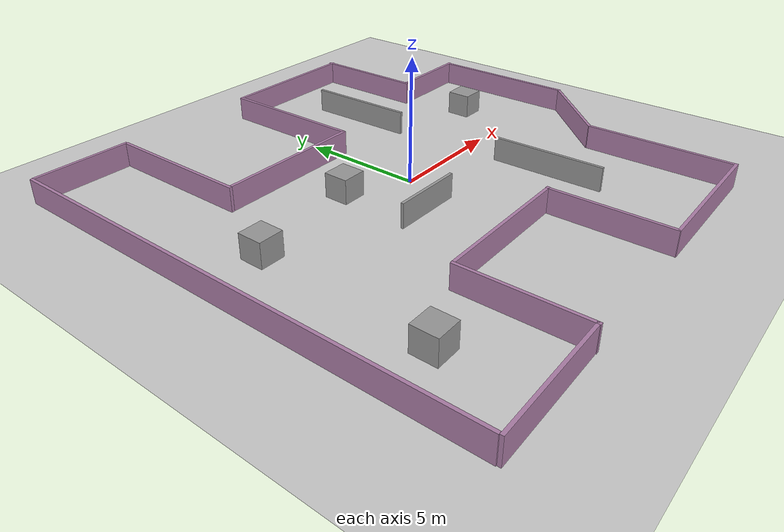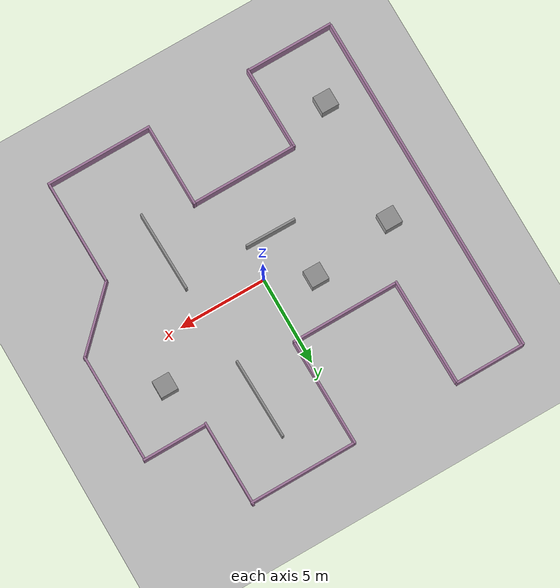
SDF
<sdf version="1.7">
 <world name="default">
  <light name="sun" type="directional">
   <pose>0 0 10 0 -0 0</pose>
   <diffuse>0.8 0.8 0.8 1</diffuse>
   <specular>0.2 0.2 0.2 1</specular>
   <attenuation>
    <range>1000</range>
    <constant>0.9</constant>
    <linear>0.01</linear>
    <quadratic>0.001</quadratic>
   </attenuation>
   <direction>-0.5 0.1 -0.9</direction>
   <spot><inner_angle>0</inner_angle><outer_angle>0</outer_angle><falloff>0</falloff></spot>
  </light>
  <model name="ground_plane">
   <static>1</static>
   <link name="link">
    <collision name="collision">
     <geometry><plane><normal>0 0 1</normal><size>100 100</size></plane></geometry>
     <surface>
      <contact><collide_bitmask>65535</collide_bitmask></contact>
      <friction><ode><mu>100</mu><mu2>50</mu2></ode></friction>
     </surface>
    </collision>
    <visual name="visual">
     <cast_shadows>0</cast_shadows>
     <geometry><plane><normal>0 0 1</normal><size>100 100</size></plane></geometry>
     <material>
      <script><uri>file://media/materials/scripts/gazebo.material</uri><name>Gazebo/Grey</name></script>
     </material>
    </visual>
   </link>
  </model>
  <gravity>0 0 -9.8</gravity>
  <magnetic_field>6e-06 2.3e-05 -4.2e-05</magnetic_field>
  <atmosphere type="adiabatic"/>
  <physics type="ode">
   <max_step_size>0.001</max_step_size>
   <real_time_factor>1</real_time_factor>
   <real_time_update_rate>1000</real_time_update_rate>
  </physics>
  <scene><ambient>0.4 0.4 0.4 1</ambient><background>0.7 0.7 0.7 1</background><shadows>1</shadows></scene>
  <spherical_coordinates>
   <surface_model>EARTH_WGS84</surface_model>
   <latitude_deg>0</latitude_deg>
   <longitude_deg>0</longitude_deg>
   <elevation>0</elevation>
   <heading_deg>0</heading_deg>
  </spherical_coordinates>
  <model name="walls2">
   <link name="link_0">
    <inertial>
     <mass>50</mass>
     <inertia><ixx>4.23073</ixx><ixy>0</ixy><ixz>0</ixz><iyy>159.789</iyy><iyz>0</iyz><izz>155.687</izz></inertia>
    </inertial>
    <pose>2.81569 9.66174 -0 0 -0 0</pose>
    <visual name="visual">
     <geometry><box><size>6.11142 0.123995 1</size></box></geometry>
     <material>
      <lighting>1</lighting>
      <script><uri>file://media/materials/scripts/gazebo.material</uri><name>Gazebo/Grey</name></script>
      <shader type="pixel"><normal_map>__default__</normal_map></shader>
      <ambient>0.678 0.498 0.659 1</ambient>
      <diffuse>0.7 0.7 0.7 1</diffuse>
      <specular>0.01 0.01 0.01 1</specular>
      <emissive>0 0 0 1</emissive>
     </material>
    </visual>
    <collision name="collision">
     <geometry><box><size>6.11142 0.123995 1</size></box></geometry>
     <surface>
      <friction>
       <ode><mu>1</mu><mu2>1</mu2><fdir1>0 0 0</fdir1><slip1>0</slip1><slip2>0</slip2></ode>
       <torsional>
        <coefficient>1</coefficient>
        <patch_radius>0</patch_radius>
        <surface_radius>0</surface_radius>
        <use_patch_radius>1</use_patch_radius>
        <ode><slip>0</slip></ode>
       </torsional>
      </friction>
      <bounce><restitution_coefficient>0</restitution_coefficient><threshold>1e+06</threshold></bounce>
      <contact>
       <collide_without_contact>0</collide_without_contact>
       <collide_without_contact_bitmask>1</collide_without_contact_bitmask>
       <collide_bitmask>1</collide_bitmask>
       <ode>
        <soft_cfm>0</soft_cfm>
        <soft_erp>0.2</soft_erp>
        <kp>1e+13</kp>
        <kd>1</kd>
        <max_vel>0.01</max_vel>
        <min_depth>0</min_depth>
       </ode>
       <bullet>
        <split_impulse>1</split_impulse>
        <split_impulse_penetration_threshold>-0.01</split_impulse_penetration_threshold>
        <soft_cfm>0</soft_cfm>
        <soft_erp>0.2</soft_erp>
        <kp>1e+13</kp>
        <kd>1</kd>
       </bullet>
      </contact>
     </surface>
    </collision>
   </link>
   <link name="link_0_clone">
    <inertial>
     <mass>50</mass>
     <inertia><ixx>4.23073</ixx><ixy>0</ixy><ixz>0</ixz><iyy>159.789</iyy><iyz>0</iyz><izz>155.687</izz></inertia>
    </inertial>
    <pose>-3.2525 3.58824 -0 0 -0 0</pose>
    <visual name="visual">
     <geometry><box><size>6.11142 0.123995 1</size></box></geometry>
     <material>
      <lighting>1</lighting>
      <script><uri>file://media/materials/scripts/gazebo.material</uri><name>Gazebo/Grey</name></script>
      <shader type="pixel"><normal_map>__default__</normal_map></shader>
      <ambient>0.678 0.498 0.659 1</ambient>
      <diffuse>0.7 0.7 0.7 1</diffuse>
      <specular>0.01 0.01 0.01 1</specular>
      <emissive>0 0 0 1</emissive>
     </material>
    </visual>
    <collision name="collision">
     <geometry><box><size>6.11142 0.123995 1</size></box></geometry>
     <surface>
      <friction>
       <ode><mu>1</mu><mu2>1</mu2><fdir1>0 0 0</fdir1><slip1>0</slip1><slip2>0</slip2></ode>
       <torsional>
        <coefficient>1</coefficient>
        <patch_radius>0</patch_radius>
        <surface_radius>0</surface_radius>
        <use_patch_radius>1</use_patch_radius>
        <ode><slip>0</slip></ode>
       </torsional>
      </friction>
      <bounce><restitution_coefficient>0</restitution_coefficient><threshold>1e+06</threshold></bounce>
      <contact>
       <collide_without_contact>0</collide_without_contact>
       <collide_without_contact_bitmask>1</collide_without_contact_bitmask>
       <collide_bitmask>1</collide_bitmask>
       <ode>
        <soft_cfm>0</soft_cfm>
        <soft_erp>0.2</soft_erp>
        <kp>1e+13</kp>
        <kd>1</kd>
        <max_vel>0.01</max_vel>
        <min_depth>0</min_depth>
       </ode>
       <bullet>
        <split_impulse>1</split_impulse>
        <split_impulse_penetration_threshold>-0.01</split_impulse_penetration_threshold>
        <soft_cfm>0</soft_cfm>
        <soft_erp>0.2</soft_erp>
        <kp>1e+13</kp>
        <kd>1</kd>
       </bullet>
      </contact>
     </surface>
    </collision>
   </link>
   <link name="link_0_clone_0">
    <inertial>
     <mass>50</mass>
     <inertia><ixx>4.23073</ixx><ixy>0</ixy><ixz>0</ixz><iyy>159.789</iyy><iyz>0</iyz><izz>155.687</izz></inertia>
    </inertial>
    <pose>-0.275729 6.66057 0 0 -0 1.57761</pose>
    <visual name="visual">
     <geometry><box><size>6.11142 0.123995 1</size></box></geometry>
     <material>
      <lighting>1</lighting>
      <script><uri>file://media/materials/scripts/gazebo.material</uri><name>Gazebo/Grey</name></script>
      <shader type="pixel"><normal_map>__default__</normal_map></shader>
      <ambient>0.678 0.498 0.659 1</ambient>
      <diffuse>0.7 0.7 0.7 1</diffuse>
      <specular>0.01 0.01 0.01 1</specular>
      <emissive>0 0 0 1</emissive>
     </material>
    </visual>
    <collision name="collision">
     <geometry><box><size>6.11142 0.123995 1</size></box></geometry>
     <surface>
      <friction>
       <ode><mu>1</mu><mu2>1</mu2><fdir1>0 0 0</fdir1><slip1>0</slip1><slip2>0</slip2></ode>
       <torsional>
        <coefficient>1</coefficient>
        <patch_radius>0</patch_radius>
        <surface_radius>0</surface_radius>
        <use_patch_radius>1</use_patch_radius>
        <ode><slip>0</slip></ode>
       </torsional>
      </friction>
      <bounce><restitution_coefficient>0</restitution_coefficient><threshold>1e+06</threshold></bounce>
      <contact>
       <collide_without_contact>0</collide_without_contact>
       <collide_without_contact_bitmask>1</collide_without_contact_bitmask>
       <collide_bitmask>1</collide_bitmask>
       <ode>
        <soft_cfm>0</soft_cfm>
        <soft_erp>0.2</soft_erp>
        <kp>1e+13</kp>
        <kd>1</kd>
        <max_vel>0.01</max_vel>
        <min_depth>0</min_depth>
       </ode>
       <bullet>
        <split_impulse>1</split_impulse>
        <split_impulse_penetration_threshold>-0.01</split_impulse_penetration_threshold>
        <soft_cfm>0</soft_cfm>
        <soft_erp>0.2</soft_erp>
        <kp>1e+13</kp>
        <kd>1</kd>
       </bullet>
      </contact>
     </surface>
    </collision>
   </link>
   <link name="link_0_clone_0_clone">
    <inertial>
     <mass>50</mass>
     <inertia><ixx>4.23073</ixx><ixy>0</ixy><ixz>0</ixz><iyy>159.789</iyy><iyz>0</iyz><izz>155.687</izz></inertia>
    </inertial>
    <pose>-6.39642 6.57189 -0 0 -0 1.57761</pose>
    <visual name="visual">
     <geometry><box><size>6.11142 0.123995 1</size></box></geometry>
     <material>
      <lighting>1</lighting>
      <script><uri>file://media/materials/scripts/gazebo.material</uri><name>Gazebo/Grey</name></script>
      <shader type="pixel"><normal_map>__default__</normal_map></shader>
      <ambient>0.678 0.498 0.659 1</ambient>
      <diffuse>0.7 0.7 0.7 1</diffuse>
      <specular>0.01 0.01 0.01 1</specular>
      <emissive>0 0 0 1</emissive>
     </material>
    </visual>
    <collision name="collision">
     <geometry><box><size>6.11142 0.123995 1</size></box></geometry>
     <surface>
      <friction>
       <ode><mu>1</mu><mu2>1</mu2><fdir1>0 0 0</fdir1><slip1>0</slip1><slip2>0</slip2></ode>
       <torsional>
        <coefficient>1</coefficient>
        <patch_radius>0</patch_radius>
        <surface_radius>0</surface_radius>
        <use_patch_radius>1</use_patch_radius>
        <ode><slip>0</slip></ode>
       </torsional>
      </friction>
      <bounce><restitution_coefficient>0</restitution_coefficient><threshold>1e+06</threshold></bounce>
      <contact>
       <collide_without_contact>0</collide_without_contact>
       <collide_without_contact_bitmask>1</collide_without_contact_bitmask>
       <collide_bitmask>1</collide_bitmask>
       <ode>
        <soft_cfm>0</soft_cfm>
        <soft_erp>0.2</soft_erp>
        <kp>1e+13</kp>
        <kd>1</kd>
        <max_vel>0.01</max_vel>
        <min_depth>0</min_depth>
       </ode>
       <bullet>
        <split_impulse>1</split_impulse>
        <split_impulse_penetration_threshold>-0.01</split_impulse_penetration_threshold>
        <soft_cfm>0</soft_cfm>
        <soft_erp>0.2</soft_erp>
        <kp>1e+13</kp>
        <kd>1</kd>
       </bullet>
      </contact>
     </surface>
    </collision>
   </link>
   <link name="link_0_clone_0_clone_0">
    <inertial>
     <mass>50</mass>
     <inertia><ixx>4.23073</ixx><ixy>0</ixy><ixz>0</ixz><iyy>104.411</iyy><iyz>0</iyz><izz>100.308</izz></inertia>
    </inertial>
    <pose>5.79942 7.34796 0 0 -0 1.57761</pose>
    <visual name="visual">
     <geometry><box><size>4.90496 0.123995 1</size></box></geometry>
     <material>
      <lighting>1</lighting>
      <script><uri>file://media/materials/scripts/gazebo.material</uri><name>Gazebo/Grey</name></script>
      <shader type="pixel"><normal_map>__default__</normal_map></shader>
      <ambient>0.678 0.498 0.659 1</ambient>
      <diffuse>0.7 0.7 0.7 1</diffuse>
      <specular>0.01 0.01 0.01 1</specular>
      <emissive>0 0 0 1</emissive>
     </material>
    </visual>
    <collision name="collision">
     <geometry><box><size>4.90496 0.123995 1</size></box></geometry>
     <surface>
      <friction>
       <ode><mu>1</mu><mu2>1</mu2><fdir1>0 0 0</fdir1><slip1>0</slip1><slip2>0</slip2></ode>
       <torsional>
        <coefficient>1</coefficient>
        <patch_radius>0</patch_radius>
        <surface_radius>0</surface_radius>
        <use_patch_radius>1</use_patch_radius>
        <ode><slip>0</slip></ode>
       </torsional>
      </friction>
      <bounce><restitution_coefficient>0</restitution_coefficient><threshold>1e+06</threshold></bounce>
      <contact>
       <collide_without_contact>0</collide_without_contact>
       <collide_without_contact_bitmask>1</collide_without_contact_bitmask>
       <collide_bitmask>1</collide_bitmask>
       <ode>
        <soft_cfm>0</soft_cfm>
        <soft_erp>0.2</soft_erp>
        <kp>1e+13</kp>
        <kd>1</kd>
        <max_vel>0.01</max_vel>
        <min_depth>0</min_depth>
       </ode>
       <bullet>
        <split_impulse>1</split_impulse>
        <split_impulse_penetration_threshold>-0.01</split_impulse_penetration_threshold>
        <soft_cfm>0</soft_cfm>
        <soft_erp>0.2</soft_erp>
        <kp>1e+13</kp>
        <kd>1</kd>
       </bullet>
      </contact>
     </surface>
    </collision>
   </link>
   <link name="link_0_clone_0_clone_clone">
    <inertial>
     <mass>50</mass>
     <inertia><ixx>4.23073</ixx><ixy>0</ixy><ixz>0</ixz><iyy>1607.24</iyy><iyz>0</iyz><izz>1603.13</izz></inertia>
    </inertial>
    <pose>-10.39 -0.11205 -0 0 -0 1.57046</pose>
    <visual name="visual">
     <geometry><box><size>19.6147 0.123995 1</size></box></geometry>
     <material>
      <lighting>1</lighting>
      <script><uri>file://media/materials/scripts/gazebo.material</uri><name>Gazebo/Grey</name></script>
      <shader type="pixel"><normal_map>__default__</normal_map></shader>
      <ambient>0.678 0.498 0.659 1</ambient>
      <diffuse>0.7 0.7 0.7 1</diffuse>
      <specular>0.01 0.01 0.01 1</specular>
      <emissive>0 0 0 1</emissive>
     </material>
    </visual>
    <collision name="collision">
     <geometry><box><size>19.6147 0.123995 1</size></box></geometry>
     <surface>
      <friction>
       <ode><mu>1</mu><mu2>1</mu2><fdir1>0 0 0</fdir1><slip1>0</slip1><slip2>0</slip2></ode>
       <torsional>
        <coefficient>1</coefficient>
        <patch_radius>0</patch_radius>
        <surface_radius>0</surface_radius>
        <use_patch_radius>1</use_patch_radius>
        <ode><slip>0</slip></ode>
       </torsional>
      </friction>
      <bounce><restitution_coefficient>0</restitution_coefficient><threshold>1e+06</threshold></bounce>
      <contact>
       <collide_without_contact>0</collide_without_contact>
       <collide_without_contact_bitmask>1</collide_without_contact_bitmask>
       <collide_bitmask>1</collide_bitmask>
       <ode>
        <soft_cfm>0</soft_cfm>
        <soft_erp>0.2</soft_erp>
        <kp>1e+13</kp>
        <kd>1</kd>
        <max_vel>0.01</max_vel>
        <min_depth>0</min_depth>
       </ode>
       <bullet>
        <split_impulse>1</split_impulse>
        <split_impulse_penetration_threshold>-0.01</split_impulse_penetration_threshold>
        <soft_cfm>0</soft_cfm>
        <soft_erp>0.2</soft_erp>
        <kp>1e+13</kp>
        <kd>1</kd>
       </bullet>
      </contact>
     </surface>
    </collision>
   </link>
   <link name="link_0_clone_0_clone_clone_1">
    <inertial>
     <mass>50</mass>
     <inertia><ixx>4.23073</ixx><ixy>0</ixy><ixz>0</ixz><iyy>159.789</iyy><iyz>0</iyz><izz>155.687</izz></inertia>
    </inertial>
    <pose>9.45052 1.86327 0 0 -0 1.57761</pose>
    <visual name="visual">
     <geometry><box><size>6.11142 0.123995 1</size></box></geometry>
     <material>
      <lighting>1</lighting>
      <script><uri>file://media/materials/scripts/gazebo.material</uri><name>Gazebo/Grey</name></script>
      <shader type="pixel"><normal_map>__default__</normal_map></shader>
      <ambient>0.678 0.498 0.659 1</ambient>
      <diffuse>0.7 0.7 0.7 1</diffuse>
      <specular>0.01 0.01 0.01 1</specular>
      <emissive>0 0 0 1</emissive>
     </material>
    </visual>
    <collision name="collision">
     <geometry><box><size>6.11142 0.123995 1</size></box></geometry>
     <surface>
      <friction>
       <ode><mu>1</mu><mu2>1</mu2><fdir1>0 0 0</fdir1><slip1>0</slip1><slip2>0</slip2></ode>
       <torsional>
        <coefficient>1</coefficient>
        <patch_radius>0</patch_radius>
        <surface_radius>0</surface_radius>
        <use_patch_radius>1</use_patch_radius>
        <ode><slip>0</slip></ode>
       </torsional>
      </friction>
      <bounce><restitution_coefficient>0</restitution_coefficient><threshold>1e+06</threshold></bounce>
      <contact>
       <collide_without_contact>0</collide_without_contact>
       <collide_without_contact_bitmask>1</collide_without_contact_bitmask>
       <collide_bitmask>1</collide_bitmask>
       <ode>
        <soft_cfm>0</soft_cfm>
        <soft_erp>0.2</soft_erp>
        <kp>1e+13</kp>
        <kd>1</kd>
        <max_vel>0.01</max_vel>
        <min_depth>0</min_depth>
       </ode>
       <bullet>
        <split_impulse>1</split_impulse>
        <split_impulse_penetration_threshold>-0.01</split_impulse_penetration_threshold>
        <soft_cfm>0</soft_cfm>
        <soft_erp>0.2</soft_erp>
        <kp>1e+13</kp>
        <kd>1</kd>
       </bullet>
      </contact>
     </surface>
    </collision>
   </link>
   <link name="link_0_clone_0_clone_clone_1_clone">
    <inertial>
     <mass>50</mass>
     <inertia><ixx>4.23073</ixx><ixy>0</ixy><ixz>0</ixz><iyy>150.274</iyy><iyz>0</iyz><izz>146.172</izz></inertia>
    </inertial>
    <pose>6.54357 -7.01597 0 0 -0 1.57761</pose>
    <visual name="visual">
     <geometry><box><size>5.92164 0.123995 1</size></box></geometry>
     <material>
      <lighting>1</lighting>
      <script><uri>file://media/materials/scripts/gazebo.material</uri><name>Gazebo/Grey</name></script>
      <shader type="pixel"><normal_map>__default__</normal_map></shader>
      <ambient>0.678 0.498 0.659 1</ambient>
      <diffuse>0.7 0.7 0.7 1</diffuse>
      <specular>0.01 0.01 0.01 1</specular>
      <emissive>0 0 0 1</emissive>
     </material>
    </visual>
    <collision name="collision">
     <geometry><box><size>5.92164 0.123995 1</size></box></geometry>
     <surface>
      <friction>
       <ode><mu>1</mu><mu2>1</mu2><fdir1>0 0 0</fdir1><slip1>0</slip1><slip2>0</slip2></ode>
       <torsional>
        <coefficient>1</coefficient>
        <patch_radius>0</patch_radius>
        <surface_radius>0</surface_radius>
        <use_patch_radius>1</use_patch_radius>
        <ode><slip>0</slip></ode>
       </torsional>
      </friction>
      <bounce><restitution_coefficient>0</restitution_coefficient><threshold>1e+06</threshold></bounce>
      <contact>
       <collide_without_contact>0</collide_without_contact>
       <collide_without_contact_bitmask>1</collide_without_contact_bitmask>
       <collide_bitmask>1</collide_bitmask>
       <ode>
        <soft_cfm>0</soft_cfm>
        <soft_erp>0.2</soft_erp>
        <kp>1e+13</kp>
        <kd>1</kd>
        <max_vel>0.01</max_vel>
        <min_depth>0</min_depth>
       </ode>
       <bullet>
        <split_impulse>1</split_impulse>
        <split_impulse_penetration_threshold>-0.01</split_impulse_penetration_threshold>
        <soft_cfm>0</soft_cfm>
        <soft_erp>0.2</soft_erp>
        <kp>1e+13</kp>
        <kd>1</kd>
       </bullet>
      </contact>
     </surface>
    </collision>
   </link>
   <link name="link_0_clone_0_clone_clone_1_clone_0">
    <inertial>
     <mass>50</mass>
     <inertia><ixx>4.23073</ixx><ixy>0</ixy><ixz>0</ixz><iyy>80.3782</iyy><iyz>0</iyz><izz>76.2756</izz></inertia>
    </inertial>
    <pose>8.00906 -2.60649 -0 0 -0 0.779476</pose>
    <visual name="visual">
     <geometry><box><size>4.27677 0.123995 1</size></box></geometry>
     <material>
      <lighting>1</lighting>
      <script><uri>file://media/materials/scripts/gazebo.material</uri><name>Gazebo/Grey</name></script>
      <shader type="pixel"><normal_map>__default__</normal_map></shader>
      <ambient>0.678 0.498 0.659 1</ambient>
      <diffuse>0.7 0.7 0.7 1</diffuse>
      <specular>0.01 0.01 0.01 1</specular>
      <emissive>0 0 0 1</emissive>
     </material>
    </visual>
    <collision name="collision">
     <geometry><box><size>4.27677 0.123995 1</size></box></geometry>
     <surface>
      <friction>
       <ode><mu>1</mu><mu2>1</mu2><fdir1>0 0 0</fdir1><slip1>0</slip1><slip2>0</slip2></ode>
       <torsional>
        <coefficient>1</coefficient>
        <patch_radius>0</patch_radius>
        <surface_radius>0</surface_radius>
        <use_patch_radius>1</use_patch_radius>
        <ode><slip>0</slip></ode>
       </torsional>
      </friction>
      <bounce><restitution_coefficient>0</restitution_coefficient><threshold>1e+06</threshold></bounce>
      <contact>
       <collide_without_contact>0</collide_without_contact>
       <collide_without_contact_bitmask>1</collide_without_contact_bitmask>
       <collide_bitmask>1</collide_bitmask>
       <ode>
        <soft_cfm>0</soft_cfm>
        <soft_erp>0.2</soft_erp>
        <kp>1e+13</kp>
        <kd>1</kd>
        <max_vel>0.01</max_vel>
        <min_depth>0</min_depth>
       </ode>
       <bullet>
        <split_impulse>1</split_impulse>
        <split_impulse_penetration_threshold>-0.01</split_impulse_penetration_threshold>
        <soft_cfm>0</soft_cfm>
        <soft_erp>0.2</soft_erp>
        <kp>1e+13</kp>
        <kd>1</kd>
       </bullet>
      </contact>
     </surface>
    </collision>
   </link>
   <link name="link_0_clone_0_clone_clone_1_clone_1">
    <inertial>
     <mass>50</mass>
     <inertia><ixx>4.23073</ixx><ixy>0</ixy><ixz>0</ixz><iyy>100.443</iyy><iyz>0</iyz><izz>96.3407</izz></inertia>
    </inertial>
    <pose>0.563417 -7.63733 -0 0 -0 1.57761</pose>
    <visual name="visual">
     <geometry><box><size>4.80691 0.123995 1</size></box></geometry>
     <material>
      <lighting>1</lighting>
      <script><uri>file://media/materials/scripts/gazebo.material</uri><name>Gazebo/Grey</name></script>
      <shader type="pixel"><normal_map>__default__</normal_map></shader>
      <ambient>0.678 0.498 0.659 1</ambient>
      <diffuse>0.7 0.7 0.7 1</diffuse>
      <specular>0.01 0.01 0.01 1</specular>
      <emissive>0 0 0 1</emissive>
     </material>
    </visual>
    <collision name="collision">
     <geometry><box><size>4.80691 0.123995 1</size></box></geometry>
     <surface>
      <friction>
       <ode><mu>1</mu><mu2>1</mu2><fdir1>0 0 0</fdir1><slip1>0</slip1><slip2>0</slip2></ode>
       <torsional>
        <coefficient>1</coefficient>
        <patch_radius>0</patch_radius>
        <surface_radius>0</surface_radius>
        <use_patch_radius>1</use_patch_radius>
        <ode><slip>0</slip></ode>
       </torsional>
      </friction>
      <bounce><restitution_coefficient>0</restitution_coefficient><threshold>1e+06</threshold></bounce>
      <contact>
       <collide_without_contact>0</collide_without_contact>
       <collide_without_contact_bitmask>1</collide_without_contact_bitmask>
       <collide_bitmask>1</collide_bitmask>
       <ode>
        <soft_cfm>0</soft_cfm>
        <soft_erp>0.2</soft_erp>
        <kp>1e+13</kp>
        <kd>1</kd>
        <max_vel>0.01</max_vel>
        <min_depth>0</min_depth>
       </ode>
       <bullet>
        <split_impulse>1</split_impulse>
        <split_impulse_penetration_threshold>-0.01</split_impulse_penetration_threshold>
        <soft_cfm>0</soft_cfm>
        <soft_erp>0.2</soft_erp>
        <kp>1e+13</kp>
        <kd>1</kd>
       </bullet>
      </contact>
     </surface>
    </collision>
   </link>
   <link name="link_0_clone_0_clone_clone_1_clone_1_clone">
    <inertial>
     <mass>50</mass>
     <inertia><ixx>4.23073</ixx><ixy>0</ixy><ixz>0</ixz><iyy>100.443</iyy><iyz>0</iyz><izz>96.3407</izz></inertia>
    </inertial>
    <pose>-5.43915 -7.66802 -0 0 -0 1.57761</pose>
    <visual name="visual">
     <geometry><box><size>4.80691 0.123995 1</size></box></geometry>
     <material>
      <lighting>1</lighting>
      <script><uri>file://media/materials/scripts/gazebo.material</uri><name>Gazebo/Grey</name></script>
      <shader type="pixel"><normal_map>__default__</normal_map></shader>
      <ambient>0.678 0.498 0.659 1</ambient>
      <diffuse>0.7 0.7 0.7 1</diffuse>
      <specular>0.01 0.01 0.01 1</specular>
      <emissive>0 0 0 1</emissive>
     </material>
    </visual>
    <collision name="collision">
     <geometry><box><size>4.80691 0.123995 1</size></box></geometry>
     <surface>
      <friction>
       <ode><mu>1</mu><mu2>1</mu2><fdir1>0 0 0</fdir1><slip1>0</slip1><slip2>0</slip2></ode>
       <torsional>
        <coefficient>1</coefficient>
        <patch_radius>0</patch_radius>
        <surface_radius>0</surface_radius>
        <use_patch_radius>1</use_patch_radius>
        <ode><slip>0</slip></ode>
       </torsional>
      </friction>
      <bounce><restitution_coefficient>0</restitution_coefficient><threshold>1e+06</threshold></bounce>
      <contact>
       <collide_without_contact>0</collide_without_contact>
       <collide_without_contact_bitmask>1</collide_without_contact_bitmask>
       <collide_bitmask>1</collide_bitmask>
       <ode>
        <soft_cfm>0</soft_cfm>
        <soft_erp>0.2</soft_erp>
        <kp>1e+13</kp>
        <kd>1</kd>
        <max_vel>0.01</max_vel>
        <min_depth>0</min_depth>
       </ode>
       <bullet>
        <split_impulse>1</split_impulse>
        <split_impulse_penetration_threshold>-0.01</split_impulse_penetration_threshold>
        <soft_cfm>0</soft_cfm>
        <soft_erp>0.2</soft_erp>
        <kp>1e+13</kp>
        <kd>1</kd>
       </bullet>
      </contact>
     </surface>
    </collision>
   </link>
   <link name="link_0_clone_1">
    <inertial>
     <mass>50</mass>
     <inertia><ixx>4.23073</ixx><ixy>0</ixy><ixz>0</ixz><iyy>159.789</iyy><iyz>0</iyz><izz>155.687</izz></inertia>
    </inertial>
    <pose>3.57469 -10.0036 -0 0 -0 0</pose>
    <visual name="visual">
     <geometry><box><size>6.11142 0.123995 1</size></box></geometry>
     <material>
      <lighting>1</lighting>
      <script><uri>file://media/materials/scripts/gazebo.material</uri><name>Gazebo/Grey</name></script>
      <shader type="pixel"><normal_map>__default__</normal_map></shader>
      <ambient>0.678 0.498 0.659 1</ambient>
      <diffuse>0.7 0.7 0.7 1</diffuse>
      <specular>0.01 0.01 0.01 1</specular>
      <emissive>0 0 0 1</emissive>
     </material>
    </visual>
    <collision name="collision">
     <geometry><box><size>6.11142 0.123995 1</size></box></geometry>
     <surface>
      <friction>
       <ode><mu>1</mu><mu2>1</mu2><fdir1>0 0 0</fdir1><slip1>0</slip1><slip2>0</slip2></ode>
       <torsional>
        <coefficient>1</coefficient>
        <patch_radius>0</patch_radius>
        <surface_radius>0</surface_radius>
        <use_patch_radius>1</use_patch_radius>
        <ode><slip>0</slip></ode>
       </torsional>
      </friction>
      <bounce><restitution_coefficient>0</restitution_coefficient><threshold>1e+06</threshold></bounce>
      <contact>
       <collide_without_contact>0</collide_without_contact>
       <collide_without_contact_bitmask>1</collide_without_contact_bitmask>
       <collide_bitmask>1</collide_bitmask>
       <ode>
        <soft_cfm>0</soft_cfm>
        <soft_erp>0.2</soft_erp>
        <kp>1e+13</kp>
        <kd>1</kd>
        <max_vel>0.01</max_vel>
        <min_depth>0</min_depth>
       </ode>
       <bullet>
        <split_impulse>1</split_impulse>
        <split_impulse_penetration_threshold>-0.01</split_impulse_penetration_threshold>
        <soft_cfm>0</soft_cfm>
        <soft_erp>0.2</soft_erp>
        <kp>1e+13</kp>
        <kd>1</kd>
       </bullet>
      </contact>
     </surface>
    </collision>
   </link>
   <link name="link_0_clone_1_clone_0">
    <inertial>
     <mass>50</mass>
     <inertia><ixx>4.23073</ixx><ixy>0</ixy><ixz>0</ixz><iyy>159.789</iyy><iyz>0</iyz><izz>155.687</izz></inertia>
    </inertial>
    <pose>-2.41773 -5.3094 -0 0 -0 0</pose>
    <visual name="visual">
     <geometry><box><size>6.11142 0.123995 1</size></box></geometry>
     <material>
      <lighting>1</lighting>
      <script><uri>file://media/materials/scripts/gazebo.material</uri><name>Gazebo/Grey</name></script>
      <shader type="pixel"><normal_map>__default__</normal_map></shader>
      <ambient>0.678 0.498 0.659 1</ambient>
      <diffuse>0.7 0.7 0.7 1</diffuse>
      <specular>0.01 0.01 0.01 1</specular>
      <emissive>0 0 0 1</emissive>
     </material>
    </visual>
    <collision name="collision">
     <geometry><box><size>6.11142 0.123995 1</size></box></geometry>
     <surface>
      <friction>
       <ode><mu>1</mu><mu2>1</mu2><fdir1>0 0 0</fdir1><slip1>0</slip1><slip2>0</slip2></ode>
       <torsional>
        <coefficient>1</coefficient>
        <patch_radius>0</patch_radius>
        <surface_radius>0</surface_radius>
        <use_patch_radius>1</use_patch_radius>
        <ode><slip>0</slip></ode>
       </torsional>
      </friction>
      <bounce><restitution_coefficient>0</restitution_coefficient><threshold>1e+06</threshold></bounce>
      <contact>
       <collide_without_contact>0</collide_without_contact>
       <collide_without_contact_bitmask>1</collide_without_contact_bitmask>
       <collide_bitmask>1</collide_bitmask>
       <ode>
        <soft_cfm>0</soft_cfm>
        <soft_erp>0.2</soft_erp>
        <kp>1e+13</kp>
        <kd>1</kd>
        <max_vel>0.01</max_vel>
        <min_depth>0</min_depth>
       </ode>
       <bullet>
        <split_impulse>1</split_impulse>
        <split_impulse_penetration_threshold>-0.01</split_impulse_penetration_threshold>
        <soft_cfm>0</soft_cfm>
        <soft_erp>0.2</soft_erp>
        <kp>1e+13</kp>
        <kd>1</kd>
       </bullet>
      </contact>
     </surface>
    </collision>
   </link>
   <link name="link_0_clone_1_clone_0_clone">
    <inertial>
     <mass>50</mass>
     <inertia><ixx>4.23073</ixx><ixy>0</ixy><ixz>0</ixz><iyy>110.409</iyy><iyz>0</iyz><izz>106.306</izz></inertia>
    </inertial>
    <pose>-7.9003 -9.9892 -0 0 -0 0</pose>
    <visual name="visual">
     <geometry><box><size>5.04956 0.123995 1</size></box></geometry>
     <material>
      <lighting>1</lighting>
      <script><uri>file://media/materials/scripts/gazebo.material</uri><name>Gazebo/Grey</name></script>
      <shader type="pixel"><normal_map>__default__</normal_map></shader>
      <ambient>0.678 0.498 0.659 1</ambient>
      <diffuse>0.7 0.7 0.7 1</diffuse>
      <specular>0.01 0.01 0.01 1</specular>
      <emissive>0 0 0 1</emissive>
     </material>
    </visual>
    <collision name="collision">
     <geometry><box><size>5.04956 0.123995 1</size></box></geometry>
     <surface>
      <friction>
       <ode><mu>1</mu><mu2>1</mu2><fdir1>0 0 0</fdir1><slip1>0</slip1><slip2>0</slip2></ode>
       <torsional>
        <coefficient>1</coefficient>
        <patch_radius>0</patch_radius>
        <surface_radius>0</surface_radius>
        <use_patch_radius>1</use_patch_radius>
        <ode><slip>0</slip></ode>
       </torsional>
      </friction>
      <bounce><restitution_coefficient>0</restitution_coefficient><threshold>1e+06</threshold></bounce>
      <contact>
       <collide_without_contact>0</collide_without_contact>
       <collide_without_contact_bitmask>1</collide_without_contact_bitmask>
       <collide_bitmask>1</collide_bitmask>
       <ode>
        <soft_cfm>0</soft_cfm>
        <soft_erp>0.2</soft_erp>
        <kp>1e+13</kp>
        <kd>1</kd>
        <max_vel>0.01</max_vel>
        <min_depth>0</min_depth>
       </ode>
       <bullet>
        <split_impulse>1</split_impulse>
        <split_impulse_penetration_threshold>-0.01</split_impulse_penetration_threshold>
        <soft_cfm>0</soft_cfm>
        <soft_erp>0.2</soft_erp>
        <kp>1e+13</kp>
        <kd>1</kd>
       </bullet>
      </contact>
     </surface>
    </collision>
   </link>
   <link name="link_0_clone_1_clone_0_clone_0">
    <inertial>
     <mass>50</mass>
     <inertia><ixx>4.23073</ixx><ixy>0</ixy><ixz>0</ixz><iyy>60.3807</iyy><iyz>0</iyz><izz>56.2781</izz></inertia>
    </inertial>
    <pose>7.6913 4.98883 0 0 -0 0</pose>
    <visual name="visual">
     <geometry><box><size>3.67306 0.123995 1</size></box></geometry>
     <material>
      <lighting>1</lighting>
      <script><uri>file://media/materials/scripts/gazebo.material</uri><name>Gazebo/Grey</name></script>
      <shader type="pixel"><normal_map>__default__</normal_map></shader>
      <ambient>0.678 0.498 0.659 1</ambient>
      <diffuse>0.7 0.7 0.7 1</diffuse>
      <specular>0.01 0.01 0.01 1</specular>
      <emissive>0 0 0 1</emissive>
     </material>
    </visual>
    <collision name="collision">
     <geometry><box><size>3.67306 0.123995 1</size></box></geometry>
     <surface>
      <friction>
       <ode><mu>1</mu><mu2>1</mu2><fdir1>0 0 0</fdir1><slip1>0</slip1><slip2>0</slip2></ode>
       <torsional>
        <coefficient>1</coefficient>
        <patch_radius>0</patch_radius>
        <surface_radius>0</surface_radius>
        <use_patch_radius>1</use_patch_radius>
        <ode><slip>0</slip></ode>
       </torsional>
      </friction>
      <bounce><restitution_coefficient>0</restitution_coefficient><threshold>1e+06</threshold></bounce>
      <contact>
       <collide_without_contact>0</collide_without_contact>
       <collide_without_contact_bitmask>1</collide_without_contact_bitmask>
       <collide_bitmask>1</collide_bitmask>
       <ode>
        <soft_cfm>0</soft_cfm>
        <soft_erp>0.2</soft_erp>
        <kp>1e+13</kp>
        <kd>1</kd>
        <max_vel>0.01</max_vel>
        <min_depth>0</min_depth>
       </ode>
       <bullet>
        <split_impulse>1</split_impulse>
        <split_impulse_penetration_threshold>-0.01</split_impulse_penetration_threshold>
        <soft_cfm>0</soft_cfm>
        <soft_erp>0.2</soft_erp>
        <kp>1e+13</kp>
        <kd>1</kd>
       </bullet>
      </contact>
     </surface>
    </collision>
   </link>
   <link name="link_0_clone_clone">
    <inertial>
     <mass>50</mass>
     <inertia><ixx>4.23073</ixx><ixy>0</ixy><ixz>0</ixz><iyy>70.544</iyy><iyz>0</iyz><izz>66.4414</izz></inertia>
    </inertial>
    <pose>-8.37584 9.65953 -0 0 -0 0</pose>
    <visual name="visual">
     <geometry><box><size>3.99131 0.123995 1</size></box></geometry>
     <material>
      <lighting>1</lighting>
      <script><uri>file://media/materials/scripts/gazebo.material</uri><name>Gazebo/Grey</name></script>
      <shader type="pixel"><normal_map>__default__</normal_map></shader>
      <ambient>0.678 0.498 0.659 1</ambient>
      <diffuse>0.7 0.7 0.7 1</diffuse>
      <specular>0.01 0.01 0.01 1</specular>
      <emissive>0 0 0 1</emissive>
     </material>
    </visual>
    <collision name="collision">
     <geometry><box><size>3.99131 0.123995 1</size></box></geometry>
     <surface>
      <friction>
       <ode><mu>1</mu><mu2>1</mu2><fdir1>0 0 0</fdir1><slip1>0</slip1><slip2>0</slip2></ode>
       <torsional>
        <coefficient>1</coefficient>
        <patch_radius>0</patch_radius>
        <surface_radius>0</surface_radius>
        <use_patch_radius>1</use_patch_radius>
        <ode><slip>0</slip></ode>
       </torsional>
      </friction>
      <bounce><restitution_coefficient>0</restitution_coefficient><threshold>1e+06</threshold></bounce>
      <contact>
       <collide_without_contact>0</collide_without_contact>
       <collide_without_contact_bitmask>1</collide_without_contact_bitmask>
       <collide_bitmask>1</collide_bitmask>
       <ode>
        <soft_cfm>0</soft_cfm>
        <soft_erp>0.2</soft_erp>
        <kp>1e+13</kp>
        <kd>1</kd>
        <max_vel>0.01</max_vel>
        <min_depth>0</min_depth>
       </ode>
       <bullet>
        <split_impulse>1</split_impulse>
        <split_impulse_penetration_threshold>-0.01</split_impulse_penetration_threshold>
        <soft_cfm>0</soft_cfm>
        <soft_erp>0.2</soft_erp>
        <kp>1e+13</kp>
        <kd>1</kd>
       </bullet>
      </contact>
     </surface>
    </collision>
   </link>
   <static>0</static>
   <pose>0.579834 0.099829 0.500003 -0 4e-06 0.003477</pose>
  </model>
  <model name="unit_box_clone">
   <pose>3.77869 -3.7998 0.498581 0.00062 -1.4e-05 0.022607</pose>
   <link name="link">
    <inertial>
     <mass>1</mass>
     <inertia>
      <ixx>0.166667</ixx>
      <ixy>0</ixy>
      <ixz>0</ixz>
      <iyy>0.166667</iyy>
      <iyz>0</iyz>
      <izz>0.166667</izz>
     </inertia>
    </inertial>
    <collision name="collision"><geometry><box><size>0.118833 4.5841 1</size></box></geometry></collision>
    <visual name="visual">
     <geometry><box><size>0.118833 4.5841 1</size></box></geometry>
     <material>
      <script><name>Gazebo/Grey</name><uri>file://media/materials/scripts/gazebo.material</uri></script>
     </material>
    </visual>
   </link>
  </model>
  <model name="unit_box_0">
   <pose>7.19873 2.31406 0.499995 0 -1e-05 0</pose>
   <link name="link">
    <inertial>
     <mass>1</mass>
     <inertia>
      <ixx>0.166667</ixx>
      <ixy>0</ixy>
      <ixz>0</ixz>
      <iyy>0.166667</iyy>
      <iyz>0</iyz>
      <izz>0.166667</izz>
     </inertia>
    </inertial>
    <collision name="collision"><geometry><box><size>1 1 1</size></box></geometry></collision>
    <visual name="visual">
     <geometry><box><size>1 1 1</size></box></geometry>
     <material>
      <script><name>Gazebo/Grey</name><uri>file://media/materials/scripts/gazebo.material</uri></script>
     </material>
    </visual>
   </link>
  </model>
  <model name="unit_box_1">
   <pose>-2.40984 1.24768 0.499995 1e-05 -0 0</pose>
   <link name="link">
    <inertial>
     <mass>1</mass>
     <inertia>
      <ixx>0.166667</ixx>
      <ixy>0</ixy>
      <ixz>0</ixz>
      <iyy>0.166667</iyy>
      <iyz>0</iyz>
      <izz>0.166667</izz>
     </inertia>
    </inertial>
    <collision name="collision"><geometry><box><size>1 1 1</size></box></geometry></collision>
    <visual name="visual">
     <geometry><box><size>1 1 1</size></box></geometry>
     <material>
      <script><name>Gazebo/Grey</name><uri>file://media/materials/scripts/gazebo.material</uri></script>
     </material>
    </visual>
   </link>
  </model>
  <model name="unit_box_clone_clone">
   <pose>-1.49963 -1.87332 0.499852 0.000102 3e-06 -1.581</pose>
   <link name="link">
    <inertial>
     <mass>1</mass>
     <inertia>
      <ixx>0.166667</ixx>
      <ixy>0</ixy>
      <ixz>0</ixz>
      <iyy>0.166667</iyy>
      <iyz>0</iyz>
      <izz>0.166667</izz>
     </inertia>
    </inertial>
    <collision name="collision"><geometry><box><size>0.118833 2.90816 1</size></box></geometry></collision>
    <visual name="visual">
     <geometry><box><size>0.118833 2.90816 1</size></box></geometry>
     <material>
      <script><name>Gazebo/Grey</name><uri>file://media/materials/scripts/gazebo.material</uri></script>
     </material>
    </visual>
   </link>
  </model>
  <model name="unit_box_2">
   <pose>-7.49913 -6.4603 0.499995 1e-05 -0 0</pose>
   <link name="link">
    <inertial>
     <mass>1</mass>
     <inertia>
      <ixx>0.166667</ixx>
      <ixy>0</ixy>
      <ixz>0</ixz>
      <iyy>0.166667</iyy>
      <iyz>0</iyz>
      <izz>0.166667</izz>
     </inertia>
    </inertial>
    <collision name="collision"><geometry><box><size>1 1 1</size></box></geometry></collision>
    <visual name="visual">
     <geometry><box><size>1 1 1</size></box></geometry>
     <material>
      <script><name>Gazebo/Grey</name><uri>file://media/materials/scripts/gazebo.material</uri></script>
     </material>
    </visual>
   </link>
  </model>
  <model name="unit_box_3">
   <pose>-7.21489 0.573987 0.499995 0 -1e-05 0</pose>
   <link name="link">
    <inertial>
     <mass>1</mass>
     <inertia>
      <ixx>0.166667</ixx>
      <ixy>0</ixy>
      <ixz>0</ixz>
      <iyy>0.166667</iyy>
      <iyz>0</iyz>
      <izz>0.166667</izz>
     </inertia>
    </inertial>
    <collision name="collision"><geometry><box><size>1 1 1</size></box></geometry></collision>
    <visual name="visual">
     <geometry><box><size>1 1 1</size></box></geometry>
     <material>
      <script><name>Gazebo/Grey</name><uri>file://media/materials/scripts/gazebo.material</uri></script>
     </material>
    </visual>
   </link>
  </model>
  <model name="unit_box_clone_clone_0">
   <pose>3.32222 5.35084 0.498581 -0.00062 1.4e-05 0.022219</pose>
   <link name="link">
    <inertial>
     <mass>1</mass>
     <inertia>
      <ixx>0.166667</ixx>
      <ixy>0</ixy>
      <ixz>0</ixz>
      <iyy>0.166667</iyy>
      <iyz>0</iyz>
      <izz>0.166667</izz>
     </inertia>
    </inertial>
    <collision name="collision"><geometry><box><size>0.118833 4.5841 1</size></box></geometry></collision>
    <visual name="visual">
     <geometry><box><size>0.118833 4.5841 1</size></box></geometry>
     <material>
      <script><name>Gazebo/Grey</name><uri>file://media/materials/scripts/gazebo.material</uri></script>
     </material>
    </visual>
   </link>
  </model>
 </world>
</sdf>
